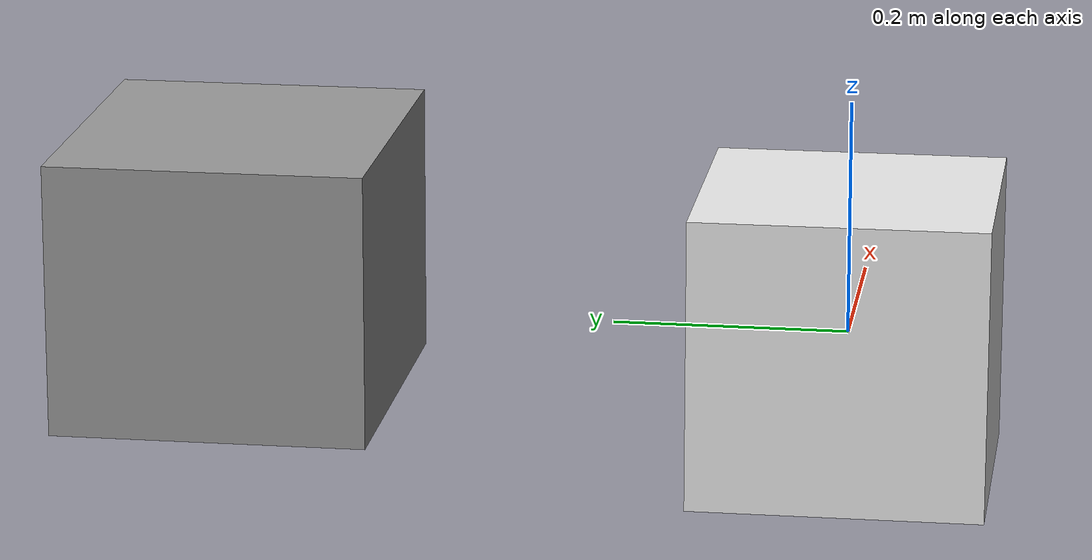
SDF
<?xml version='1.0'?>
<sdf version='1.6'>
  <model name='two_boxes_with_revolute_joint'>
    <link name='box1'>
      <inertial>
        <mass>1</mass>
        <inertia>
          <ixx>0.1</ixx>
          <ixy>0</ixy>
          <ixz>0</ixz>
          <iyy>0.1</iyy>
          <iyz>0</iyz>
          <izz>0.1</izz>
        </inertia>
        <pose frame=''>0 0 0 0 -0 0</pose>
      </inertial>
      <self_collide>0</self_collide>
      <kinematic>0</kinematic>
      <enable_wind>0</enable_wind>
      <pose frame=''>0 0 0 0 -0 0</pose>
      <visual name='visual'>
        <geometry>
          <box>
            <size>0.25 0.25 0.25</size>
          </box>
        </geometry>
        <material>
          <script>
            <name>Gazebo/White</name>
            <uri>file://media/materials/scripts/gazebo.material</uri>
          </script>
          <shader type='pixel'/>
          <emissive>0 0 0 1</emissive>
        </material>
        <pose frame=''>0 0 0 0 -0 0</pose>
        <transparency>0</transparency>
        <cast_shadows>1</cast_shadows>
      </visual>
      <collision name='collision'>
        <laser_retro>0</laser_retro>
        <max_contacts>10</max_contacts>
        <pose frame=''>0 0 0 0 -0 0</pose>
        <geometry>
          <box>
            <size>0.25 0.25 0.25</size>
          </box>
        </geometry>
        <surface>
          <friction>
            <ode>
              <mu>1</mu>
              <mu2>1</mu2>
              <fdir1>0 0 0</fdir1>
              <slip1>0</slip1>
              <slip2>0</slip2>
            </ode>
            <torsional>
              <coefficient>1</coefficient>
              <patch_radius>0</patch_radius>
              <surface_radius>0</surface_radius>
              <use_patch_radius>1</use_patch_radius>
              <ode>
                <slip>0</slip>
              </ode>
            </torsional>
          </friction>
          <bounce>
            <restitution_coefficient>0</restitution_coefficient>
            <threshold>1e+06</threshold>
          </bounce>
          <contact>
            <collide_without_contact>0</collide_without_contact>
            <collide_without_contact_bitmask>1</collide_without_contact_bitmask>
            <collide_bitmask>1</collide_bitmask>
            <ode>
              <soft_cfm>0</soft_cfm>
              <soft_erp>0.2</soft_erp>
              <kp>1e+13</kp>
              <kd>1</kd>
              <max_vel>0.01</max_vel>
              <min_depth>0</min_depth>
            </ode>
            <bullet>
              <split_impulse>1</split_impulse>
              <split_impulse_penetration_threshold>-0.01</split_impulse_penetration_threshold>
              <soft_cfm>0</soft_cfm>
              <soft_erp>0.2</soft_erp>
              <kp>1e+13</kp>
              <kd>1</kd>
            </bullet>
          </contact>
        </surface>
      </collision>
    </link>
    <link name='link_1'>
      <inertial>
        <mass>0.0196358</mass>
        <inertia>
          <ixx>0.000208683</ixx>
          <ixy>0</ixy>
          <ixz>0</ixz>
          <iyy>0.000247834</iyy>
          <iyz>0</iyz>
          <izz>0.000277832</izz>
        </inertia>
        <pose frame=''>0 0 0 0 -0 0</pose>
      </inertial>
      <pose frame=''>-0.001197 0.523976 0.043798 0 -0 0</pose>
      <self_collide>0</self_collide>
      <enable_wind>0</enable_wind>
      <kinematic>0</kinematic>
      <visual name='visual'>
        <pose frame=''>0 0 0 0 -0 0</pose>
        <geometry>
          <box>
            <size>0.311222 0.27006 0.233666</size>
          </box>
        </geometry>
        <material>
          <lighting>1</lighting>
          <script>
            <uri>file://media/materials/scripts/gazebo.material</uri>
            <name>Gazebo/Grey</name>
          </script>
          <shader type='pixel'/>
          <emissive>0 0 0 1</emissive>
        </material>
        <transparency>0</transparency>
        <cast_shadows>1</cast_shadows>
      </visual>
      <collision name='collision'>
        <laser_retro>0</laser_retro>
        <max_contacts>10</max_contacts>
        <pose frame=''>0 0 0 0 -0 0</pose>
        <geometry>
          <box>
            <size>0.311222 0.27006 0.233666</size>
          </box>
        </geometry>
        <surface>
          <friction>
            <ode>
              <mu>1</mu>
              <mu2>1</mu2>
              <fdir1>0 0 0</fdir1>
              <slip1>0</slip1>
              <slip2>0</slip2>
            </ode>
            <torsional>
              <coefficient>1</coefficient>
              <patch_radius>0</patch_radius>
              <surface_radius>0</surface_radius>
              <use_patch_radius>1</use_patch_radius>
              <ode>
                <slip>0</slip>
              </ode>
            </torsional>
          </friction>
          <bounce>
            <restitution_coefficient>0</restitution_coefficient>
            <threshold>1e+06</threshold>
          </bounce>
          <contact>
            <collide_without_contact>0</collide_without_contact>
            <collide_without_contact_bitmask>1</collide_without_contact_bitmask>
            <collide_bitmask>1</collide_bitmask>
            <ode>
              <soft_cfm>0</soft_cfm>
              <soft_erp>0.2</soft_erp>
              <kp>1e+13</kp>
              <kd>1</kd>
              <max_vel>0.01</max_vel>
              <min_depth>0</min_depth>
            </ode>
            <bullet>
              <split_impulse>1</split_impulse>
              <split_impulse_penetration_threshold>-0.01</split_impulse_penetration_threshold>
              <soft_cfm>0</soft_cfm>
              <soft_erp>0.2</soft_erp>
              <kp>1e+13</kp>
              <kd>1</kd>
            </bullet>
          </contact>
        </surface>
      </collision>
    </link>
    <joint name='box1_JOINT_1' type='revolute'>
      <parent>box1</parent>
      <child>link_1</child>
      <pose frame=''>0 0 0 0 -0 0</pose>
      <axis>
        <xyz>1 0 0</xyz>
        <use_parent_model_frame>0</use_parent_model_frame>
        <limit>
          <lower>-1.79769e+308</lower>
          <upper>1.79769e+308</upper>
          <effort>-1</effort>
          <velocity>-1</velocity>
        </limit>
        <dynamics>
          <spring_reference>0</spring_reference>
          <spring_stiffness>0</spring_stiffness>
          <damping>0</damping>
          <friction>0</friction>
        </dynamics>
      </axis>
      <physics>
        <ode>
          <limit>
            <cfm>0</cfm>
            <erp>0.2</erp>
          </limit>
          <suspension>
            <cfm>0</cfm>
            <erp>0.2</erp>
          </suspension>
        </ode>
      </physics>
    </joint>
    <static>0</static>
    <allow_auto_disable>1</allow_auto_disable>
  </model>
</sdf>
